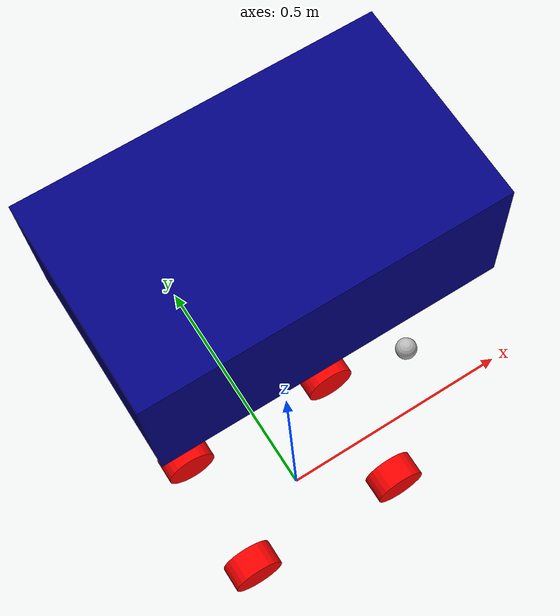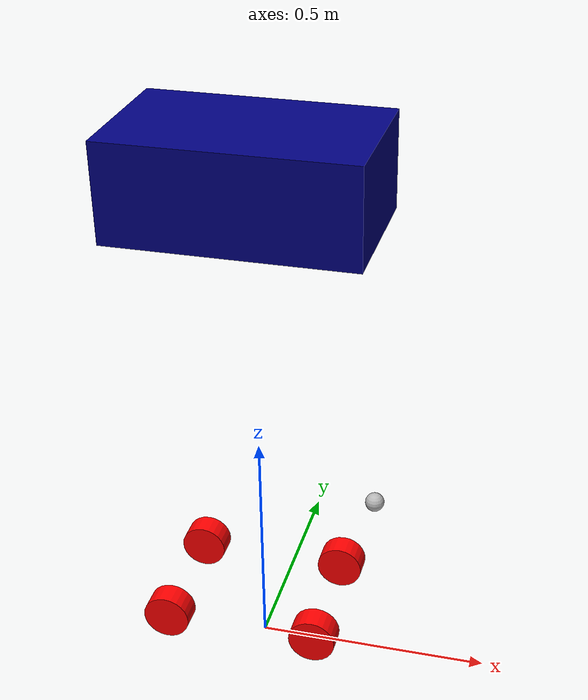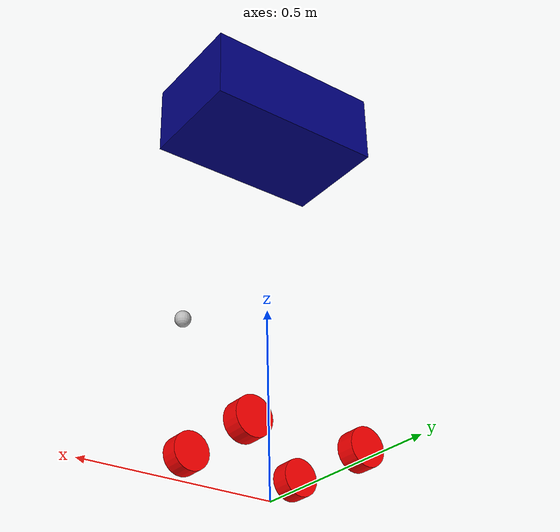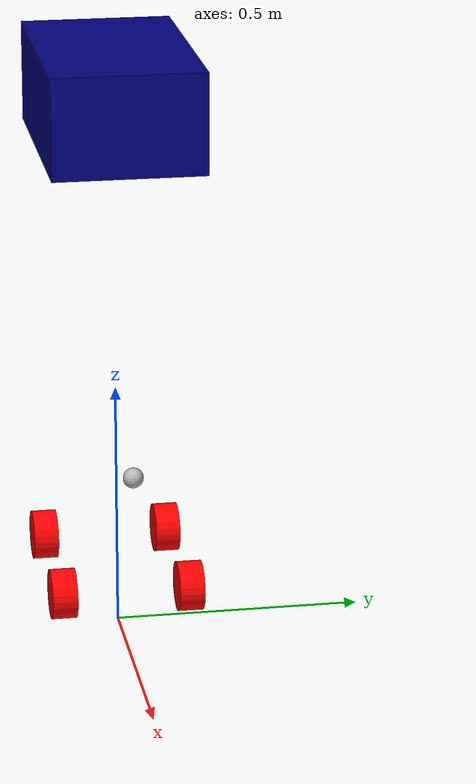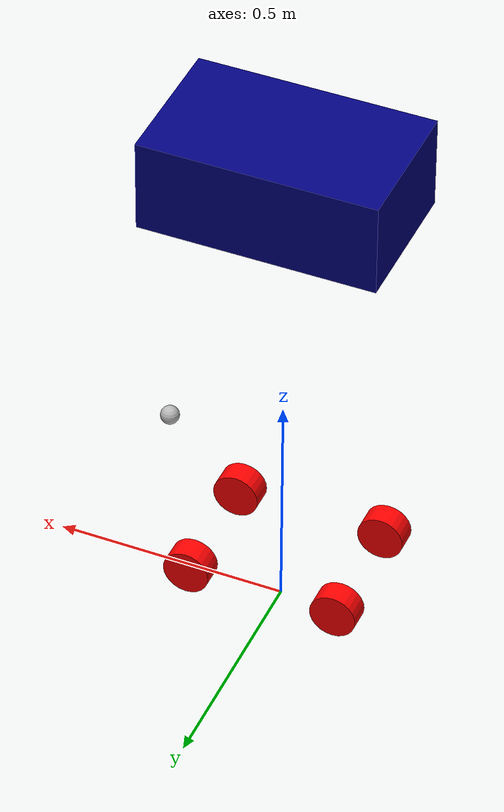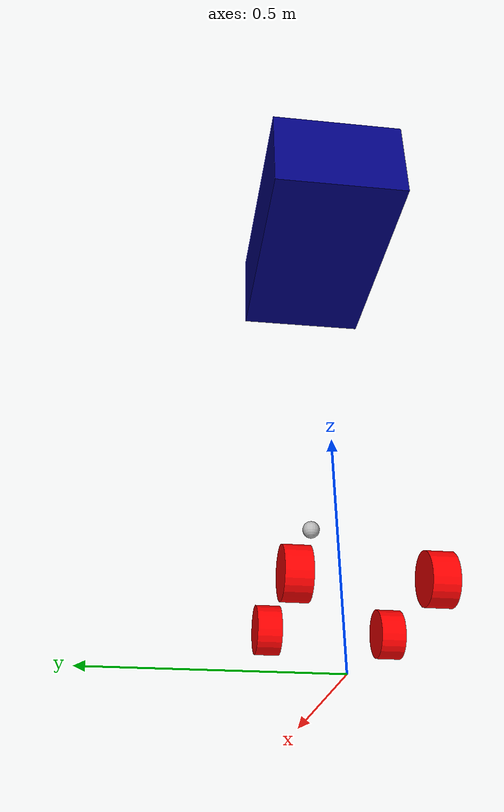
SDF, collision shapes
<?xml version="1.0" ?>
<sdf version="1.10">

	<model name="f1tenth">
        <plugin
            filename="libgz-sim-sensors-system.so"
            name="gz::sim::systems::Sensors">
            <render_engine>ogre2</render_engine>
        </plugin>
        <plugin
            filename="libgz-sim-imu-system.so"
            name="gz::sim::systems::Imu">
        </plugin>
        <plugin
          filename="gz-sim-navsat-system"
          name="gz::sim::systems::NavSat">
        </plugin>
		<plugin
			filename="libgz-sim-odometry-publisher-system.so"
			name="gz::sim::systems::OdometryPublisher">
		</plugin>

		<static>false</static>
		<pose>0 0 0.1 0 0 0</pose>

		<!-- CHASSIS______________________________________________________________________________________________________ -->
		<link name="chassis">
			<sensor name="imu_sensor" type="imu">
				<always_on>1</always_on>
				<update_rate>10</update_rate>
				<visualize>true</visualize>
				<topic>imu</topic>
			</sensor>

			<sensor name="navsat" type="navsat">
			  <always_on>1</always_on>
			  <topic>navsat</topic>
			</sensor>

			<pose relative_to='__model__'>0 0 0 0 0 3.14</pose>
			<visual name="chassis_visual">
				<geometry>
					<mesh><uri>../mesh/chassis.stl</uri><scale>0.1 0.1 0.1</scale></mesh>
				</geometry>
				<material>
					<ambient>0.0 0.0 0.5 1</ambient>
					<diffuse>0.0 0.0 0.5 1</diffuse>
					<specular>0 0 0 1</specular>
				</material>
			</visual>
			<inertial> <!--inertial properties of the link mass, inertia matix-->
				<mass>4</mass>
				<inertia>
					<ixx>0.010609</ixx>
					<ixy>0</ixy>
					<ixz>0</ixz>
					<iyy>0.050409</iyy>
					<iyz>0</iyz>
					<izz>0.05865</izz>
				</inertia>
			</inertial>
			<collision name='chassis_collision'>
				<pose>0 0 1 0 0 0</pose>
				<geometry>
					<box>
						<size>0.5 0.3 0.2</size>
					</box>
				</geometry>
			</collision>

		</link>

		<!-- LIDAR SENSOR  _________________________________________________________________________________________________ -->

		<link name="lidar">
			<pose relative_to='chassis'>-0.25 0 0.3 0 0 3.14</pose>
			<visual name="lidar_visual">
				<geometry>
					<mesh><uri>../mesh/lidar.stl</uri><scale>0.1 0.1 0.1</scale></mesh>
				</geometry>
			</visual>
			<collision name="lidar_collision">
				<geometry>
					<sphere>
						<radius>0.02</radius>
					</sphere>
				</geometry>
			</collision>
			<sensor name='gpu_lidar' type='gpu_lidar'>"
				<pose relative_to='lidar'>0 0 0 0 0 0</pose>
				<topic>lidar</topic>
				<update_rate>10</update_rate>
				<ray>
					<scan>
						<horizontal>
							<samples>640</samples>
							<resolution>1</resolution>
							<min_angle>-2.094395</min_angle>
							<max_angle>2.094395</max_angle>
						</horizontal>
						<vertical>
							<samples>1</samples>
							<resolution>0.01</resolution>
							<min_angle>0</min_angle>
							<max_angle>0</max_angle>
						</vertical>
					</scan>
					<range>
						<min>0.08</min>
						<max>10.0</max>
						<resolution>0.01</resolution>
					</range>
				</ray>
				<always_on>1</always_on>
				<visualize>true</visualize>
			</sensor>

		</link>
		<!-- FRONT RIGHT WHEEL _____________________________________________________________________________________________ -->
		<link name="front_right_wheel">
			<pose relative_to="chassis">-0.15 0.15 0.025 -1.5707 0 0</pose>
			<visual name="fr_wheel_visual">
				<geometry>
					<mesh><uri>../mesh/wheel.stl</uri><scale>0.1 0.1 0.1</scale></mesh>
				</geometry>
				<material>
            				<ambient>1.0 0.0 0.0 1</ambient>
            				<diffuse>1.0 0.0 0.0 1</diffuse>
            				<specular>1 1 1 1</specular>
        			</material>
			</visual>
			<inertial> <!--inertial properties of the link mass, inertia matix-->
				<mass>0.34055</mass>
				<inertia>
					<ixx>0.00026046</ixx>
					<ixy>0</ixy>
					<ixz>0</ixz>
					<iyy>0.00026046</iyy>
					<iyz>0</iyz>
					<izz>0.00041226</izz>
				</inertia>
    			</inertial>

			<collision name="front_right_wheel_collision">
				<pose>0 0 -0.02 0 0 0</pose>
				<geometry>
					<cylinder>
						<radius>0.05</radius>
						<length>0.05</length>
					</cylinder>
				</geometry>
			</collision>
		</link>

		<!-- BACK RIGHT WHEEL _____________________________________________________________________________________________ -->
		<link name="back_right_wheel">
			<pose relative_to="chassis">0.175 0.15 0.025 -1.5707 0 0</pose>
			<visual name="fr_wheel_visual">
				<geometry>
					<mesh><uri>../mesh/wheel.stl</uri><scale>0.1 0.1 0.1</scale></mesh>
				</geometry>
				<material>
            				<ambient>1.0 0.0 0.0 1</ambient>
            				<diffuse>1.0 0.0 0.0 1</diffuse>
            				<specular>1 1 1 1</specular>
        			</material>
			</visual>
			<inertial> <!--inertial properties of the link mass, inertia matix-->
				<mass>0.34055</mass>
				<inertia>
					<ixx>0.00026046</ixx>
					<ixy>0</ixy>
					<ixz>0</ixz>
					<iyy>0.00026046</iyy>
					<iyz>0</iyz>
					<izz>0.00041226</izz>
				</inertia>
    			</inertial>

			<collision name="front_right_wheel_collision">
				<pose>0 0 -0.02 0 0 0</pose>
				<geometry>
					<cylinder>
						<radius>0.05</radius>
						<length>0.05</length>
					</cylinder>
				</geometry>
			</collision>
		</link>
		<!-- FRONT LEFT WHEEL _____________________________________________________________________________________________ -->
		<link name="front_left_wheel">
			<pose relative_to="chassis">-0.15 -0.1 0.025 -1.5707 0 0</pose>
			<visual name="fl_wheel_visual">
				<geometry>
					<mesh><uri>../mesh/wheel.stl</uri><scale>0.1 0.1 0.1</scale></mesh>
				</geometry>
				<material>
            				<ambient>1.0 0.0 0.0 1</ambient>
            				<diffuse>1.0 0.0 0.0 1</diffuse>
            				<specular>1 1 1 1</specular>
        			</material>
			</visual>
			<inertial> <!--inertial properties of the link mass, inertia matix-->
				<mass>0.34055</mass>
				<inertia>
					<ixx>0.00026046</ixx>
					<ixy>0</ixy>
					<ixz>0</ixz>
					<iyy>0.00026046</iyy>
					<iyz>0</iyz>
					<izz>0.00041226</izz>
				</inertia>
    			</inertial>
			<collision name="front_left_wheel_collision">
				<pose>0 0 -0.025 0 0 0</pose>
				<geometry>
					<cylinder>
						<radius>0.05</radius>
						<length>0.05</length>
					</cylinder>
				</geometry>
			</collision>
		</link>

		<!-- BACK LEFT WHEEL _____________________________________________________________________________________________ -->
		<link name="back_left_wheel">
			<pose relative_to="chassis">0.175 -0.1 0.025 -1.5707 0 0</pose>
			<visual name="fl_wheel_visual">
				<geometry>
					<mesh><uri>../mesh/wheel.stl</uri><scale>0.1 0.1 0.1</scale></mesh>
				</geometry>
				<material>
            				<ambient>1.0 0.0 0.0 1</ambient>
            				<diffuse>1.0 0.0 0.0 1</diffuse>
            				<specular>1 1 1 1</specular>
        			</material>
			</visual>
			<inertial> <!--inertial properties of the link mass, inertia matix-->
				<mass>0.34055</mass>
				<inertia>
					<ixx>0.00026046</ixx>
					<ixy>0</ixy>
					<ixz>0</ixz>
					<iyy>0.00026046</iyy>
					<iyz>0</iyz>
					<izz>0.00041226</izz>
				</inertia>
    			</inertial>
			<collision name="front_left_wheel_collision">
				<pose>0 0 -0.025 0 0 0</pose>
				<geometry>
					<cylinder>
						<radius>0.05</radius>
						<length>0.05</length>
					</cylinder>
				</geometry>
			</collision>
		</link>

		<!-- JOINTS _____________________________________________________________________________________________________ -->
		<joint name='front_right_wheel_joint' type='revolute'>
    			<pose relative_to='front_right_wheel'/>
    			<parent>chassis</parent>
    			<child>front_right_wheel</child>
    			<axis>
        			<xyz expressed_in='__model__'>0 1 0</xyz> <!--can be defined as any frame or even arbitrary frames-->
        			<limit>
            				<lower>-1.79769e+308</lower>    <!--negative infinity-->
            				<upper>1.79769e+308</upper>     <!--positive infinity-->
        			</limit>
    			</axis>
		</joint>
		<joint name='back_right_wheel_joint' type='revolute'>
    			<pose relative_to='back_right_wheel'/>
    			<parent>chassis</parent>
    			<child>back_right_wheel</child>
    			<axis>
        			<xyz expressed_in='__model__'>0 1 0</xyz> <!--can be defined as any frame or even arbitrary frames-->
        			<limit>
            				<lower>-1.79769e+308</lower>    <!--negative infinity-->
            				<upper>1.79769e+308</upper>     <!--positive infinity-->
        			</limit>
    			</axis>
		</joint>

		<joint name='front_left_wheel_joint' type='revolute'>
    			<pose relative_to='front_left_wheel'/>
    			<parent>chassis</parent>
    			<child>front_left_wheel</child>
    			<axis>
        			<xyz expressed_in='__model__'>0 1 0</xyz> <!--can be defined as any frame or even arbitrary frames-->
        			<limit>
            				<lower>-1.79769e+308</lower>    <!--negative infinity-->
            				<upper>1.79769e+308</upper>     <!--positive infinity-->
        			</limit>
    			</axis>
		</joint>

		<joint name='back_left_wheel_joint' type='revolute'>
    			<pose relative_to='back_left_wheel'/>
    			<parent>chassis</parent>
    			<child>back_left_wheel</child>
    			<axis>
        			<xyz expressed_in='__model__'>0 1 0</xyz> <!--can be defined as any frame or even arbitrary frames-->
        			<limit>
            				<lower>-1.79769e+308</lower>    <!--negative infinity-->
            				<upper>1.79769e+308</upper>     <!--positive infinity-->
        			</limit>
    			</axis>
		</joint>

		<joint name='lidar_joint' type='fixed'>
			<parent>chassis</parent>
			<child>lidar</child>
		</joint>
		<!-- PLUGINS _____________________________________________________________________________________________________ -->

		<plugin
		filename="libgz-sim-diff-drive-system.so"
		name="gz::sim::systems::DiffDrive">
			<left_joint>front_left_wheel_joint</left_joint>
			<left_joint>back_left_wheel_joint</left_joint>
			<right_joint>front_right_wheel_joint</right_joint>
			<right_joint>back_right_wheel_joint</right_joint>
			<wheel_separation>0.2</wheel_separation>
			<wheel_radius>0.05</wheel_radius>
			<odom_publish_frequency>1</odom_publish_frequency>
			<topic>cmd_vel</topic>
		</plugin>

        </model>
</sdf>
